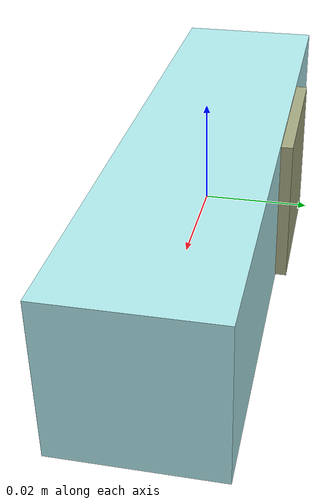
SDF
<sdf version="1.4"><world name="default"><model name="object0"><link name="link1"><pose>0 0 0 0 0 0</pose><inertial><pose>0 0 0 0 0 0</pose><mass>0.06358622966115099</mass><inertia><ixx>9.537934449172648e-06</ixx><ixy>0</ixy><iyy>7.824072956106855e-05</iyy><ixz>0</ixz><iyz>0</iyz><izz>7.824072956106855e-05</izz></inertia></inertial><visual name="link1_visual"><pose>0 0  0 0 0 0</pose><geometry><box><size>0.11775227715027961 0.03 0.03</size></box></geometry><material><diffuse>0.6987245725943336 0.9279792136972556 0.9390381288403431 1</diffuse></material></visual><collision><pose>0 0  0 0 0 0</pose><geometry><box><size>0.11775227715027961 0.03 0.03</size></box></geometry></collision></link><link name="link2"><pose>-0.011029685450304728 0.0018126970328040154 0 0 0 0</pose><inertial><pose>0 0 0 0 0 0</pose><mass>0.016670226715110495</mass><inertia><ixx>2.4922067961318785e-06</ixx><ixy>0</ixy><iyy>2.418572059250614e-06</iyy><ixz>0</ixz><iyz>0</iyz><izz>2.5741687441478386e-06</izz></inertia></inertial><visual name="link2_visual"><pose>0 0  0 0 0 0</pose><geometry><box><size>0.03 0.030870790213167583 0.028999999999999998</size></box></geometry><material><diffuse>0.6598053395637409 0.672555739082825 0.5109717178187905 1</diffuse></material></visual><collision><pose>0 0  0 0 0 0</pose><geometry><box><size>0.03 0.030870790213167583 0.028999999999999998</size></box></geometry></collision></link><joint name="link_joint_0" type="fixed"><parent>link1</parent><child>link2</child><pose>0 0 0 0 0 0</pose><axis><xyz>0 0 1</xyz></axis></joint></model></world></sdf>
